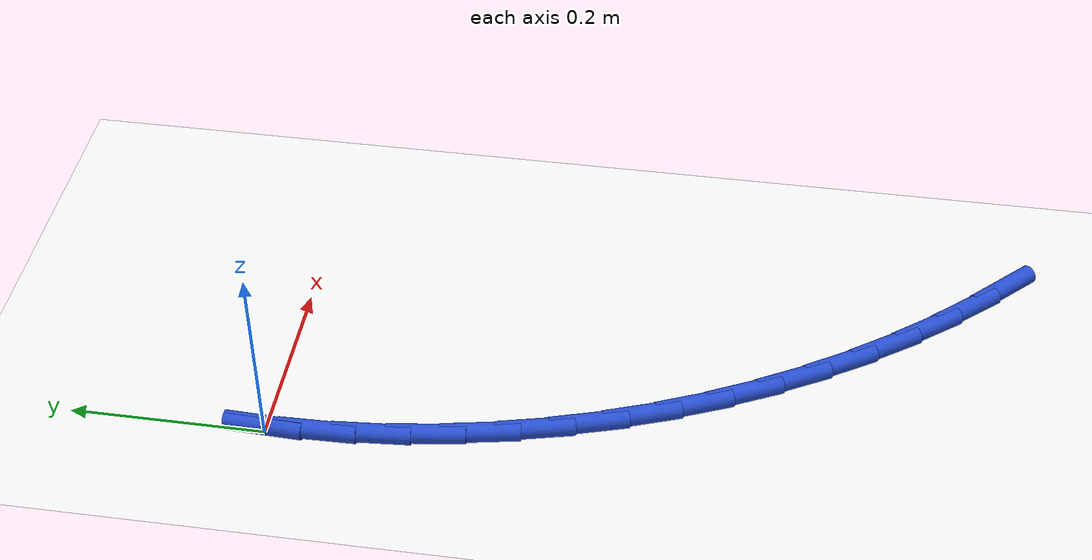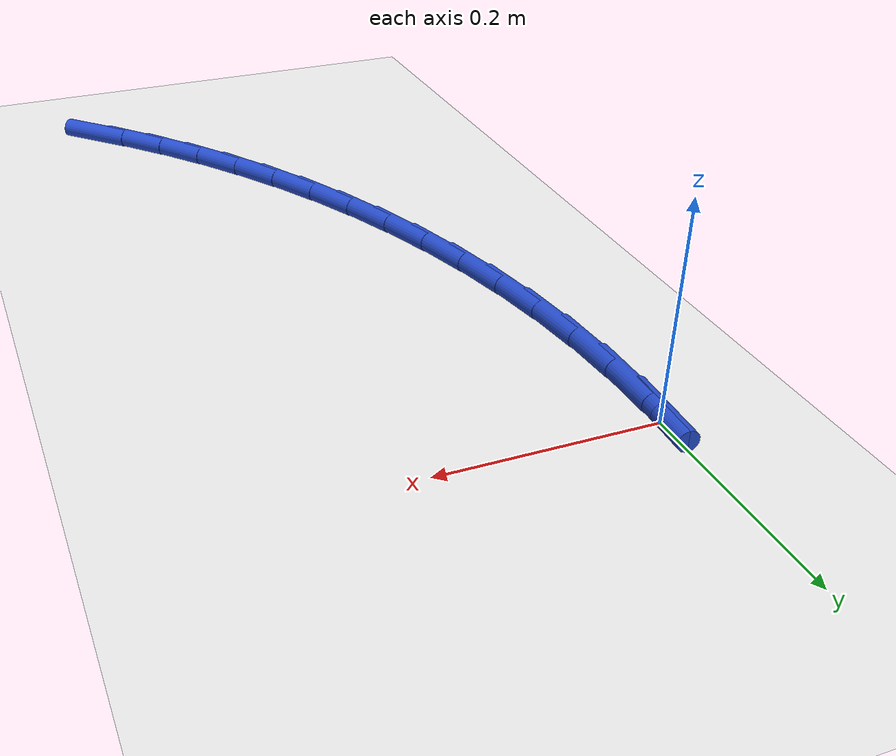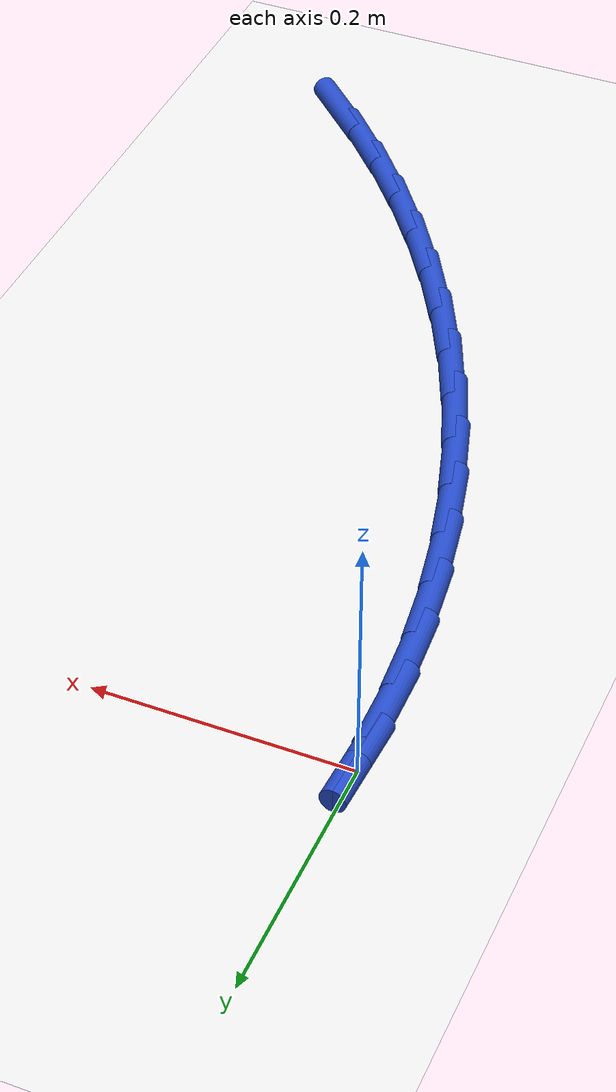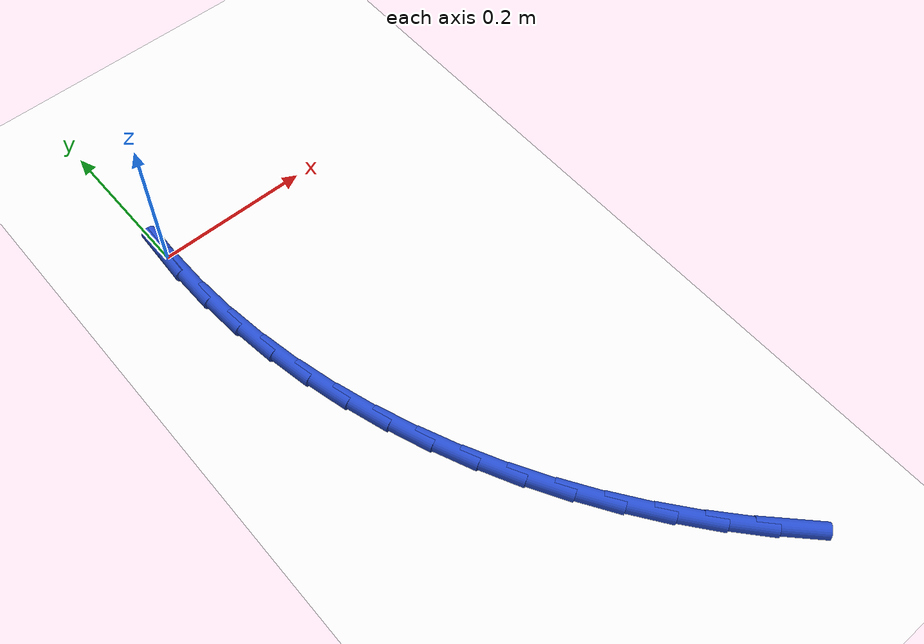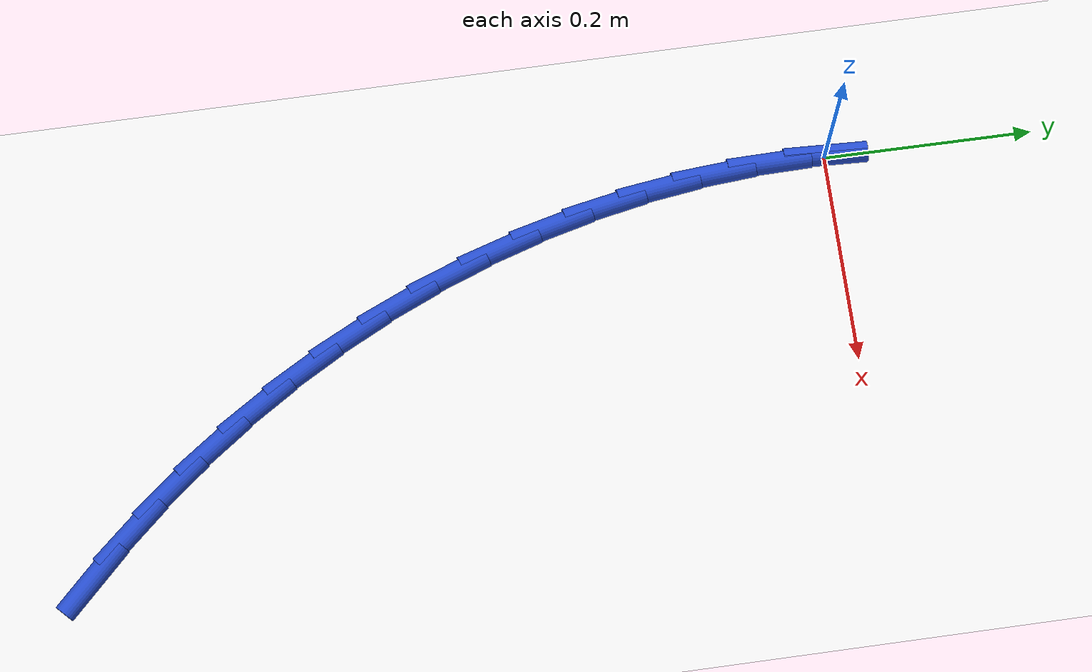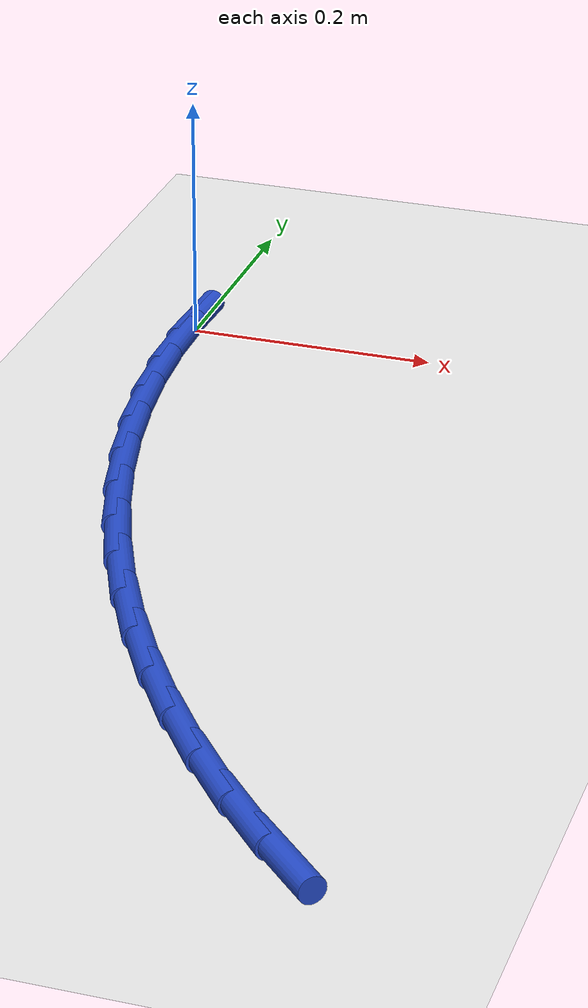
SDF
<sdf version="1.6">
 <world name="default">
  <model name="ground_plane">
   <static>1</static>
   <link name="link">
    <collision name="collision">
     <geometry><plane><normal>0 0 1</normal><size>100 100</size></plane></geometry>
     <surface><friction><ode><mu>100</mu><mu2>50</mu2></ode></friction></surface>
    </collision>
    <visual name="visual">
     <cast_shadows>0</cast_shadows>
     <geometry><plane><normal>0 0 1</normal><size>100 100</size></plane></geometry>
     <material>
      <script><uri>file://media/materials/scripts/gazebo.material</uri><name>Gazebo/WhiteGlow</name></script>
     </material>
    </visual>
   </link>
  </model>
  <model name="line">
   <link name="link_0">
    <pose>-3.122502256758253e-17 -8.326672684688674e-17 0.01 0 1.57 1.5301949164621702</pose>
    <collision name="collision">
     <geometry><cylinder><radius>0.01</radius><length>0.08</length></cylinder></geometry>
    </collision>
    <visual name="visual">
     <material>
      <script><name>Gazebo/Blue</name><uri>file://media/materials/scripts/gazebo.material</uri></script>
     </material>
     <geometry><cylinder><radius>0.01</radius><length>0.08</length></cylinder></geometry>
    </visual>
   </link>
   <link name="link_125">
    <pose>0.3131066867079045 -0.7267354090589861 0.01 0 1.57 -0.787316210090194</pose>
    <collision name="collision">
     <geometry><cylinder><radius>0.01</radius><length>0.08</length></cylinder></geometry>
    </collision>
    <visual name="visual">
     <material>
      <script><name>Gazebo/Blue</name><uri>file://media/materials/scripts/gazebo.material</uri></script>
     </material>
     <geometry><cylinder><radius>0.01</radius><length>0.08</length></cylinder></geometry>
    </visual>
   </link>
   <link name="link_126">
    <pose>0.27518445435489475 -0.6886674237415555 0.01 0 1.57 -0.841351327002172</pose>
    <collision name="collision">
     <geometry><cylinder><radius>0.01</radius><length>0.08</length></cylinder></geometry>
    </collision>
    <visual name="visual">
     <material>
      <script><name>Gazebo/Blue</name><uri>file://media/materials/scripts/gazebo.material</uri></script>
     </material>
     <geometry><cylinder><radius>0.01</radius><length>0.08</length></cylinder></geometry>
    </visual>
   </link>
   <link name="link_127">
    <pose>0.2391358392560633 -0.6483409134764496 0.01 0 1.57 -0.8944300002377676</pose>
    <collision name="collision">
     <geometry><cylinder><radius>0.01</radius><length>0.08</length></cylinder></geometry>
    </collision>
    <visual name="visual">
     <material>
      <script><name>Gazebo/Blue</name><uri>file://media/materials/scripts/gazebo.material</uri></script>
     </material>
     <geometry><cylinder><radius>0.01</radius><length>0.08</length></cylinder></geometry>
    </visual>
   </link>
   <link name="link_128">
    <pose>0.2051098276692079 -0.6059498317138223 0.01 0 1.57 -0.9469816472601591</pose>
    <collision name="collision">
     <geometry><cylinder><radius>0.01</radius><length>0.08</length></cylinder></geometry>
    </collision>
    <visual name="visual">
     <material>
      <script><name>Gazebo/Blue</name><uri>file://media/materials/scripts/gazebo.material</uri></script>
     </material>
     <geometry><cylinder><radius>0.01</radius><length>0.08</length></cylinder></geometry>
    </visual>
   </link>
   <link name="link_129">
    <pose>0.17325540585212723 -0.5616881319038293 0.01 0 1.57 -0.9994274242772518</pose>
    <collision name="collision">
     <geometry><cylinder><radius>0.01</radius><length>0.08</length></cylinder></geometry>
    </collision>
    <visual name="visual">
     <material>
      <script><name>Gazebo/Blue</name><uri>file://media/materials/scripts/gazebo.material</uri></script>
     </material>
     <geometry><cylinder><radius>0.01</radius><length>0.08</length></cylinder></geometry>
    </visual>
   </link>
   <link name="link_130">
    <pose>0.1437215600626198 -0.5157497674966258 0.01 0 1.57 -1.0521825051061495</pose>
    <collision name="collision">
     <geometry><cylinder><radius>0.01</radius><length>0.08</length></cylinder></geometry>
    </collision>
    <visual name="visual">
     <material>
      <script><name>Gazebo/Blue</name><uri>file://media/materials/scripts/gazebo.material</uri></script>
     </material>
     <geometry><cylinder><radius>0.01</radius><length>0.08</length></cylinder></geometry>
    </visual>
   </link>
   <link name="link_131">
    <pose>0.1166572765584836 -0.4683286919423654 0.01 0 1.57 -1.1056544662651768</pose>
    <collision name="collision">
     <geometry><cylinder><radius>0.01</radius><length>0.08</length></cylinder></geometry>
    </collision>
    <visual name="visual">
     <material>
      <script><name>Gazebo/Blue</name><uri>file://media/materials/scripts/gazebo.material</uri></script>
     </material>
     <geometry><cylinder><radius>0.01</radius><length>0.08</length></cylinder></geometry>
    </visual>
   </link>
   <link name="link_132">
    <pose>0.09221116387281617 -0.41961856570901224 0.01 0 1.57 -1.1598974196615088</pose>
    <collision name="collision">
     <geometry><cylinder><radius>0.01</radius><length>0.08</length></cylinder></geometry>
    </collision>
    <visual name="visual">
     <material>
      <script><name>Gazebo/Blue</name><uri>file://media/materials/scripts/gazebo.material</uri></script>
     </material>
     <geometry><cylinder><radius>0.01</radius><length>0.08</length></cylinder></geometry>
    </visual>
   </link>
   <link name="link_133">
    <pose>0.07050019092928457 -0.369788507999105 0.01 0 1.57 -1.2145280016109947</pose>
    <collision name="collision">
     <geometry><cylinder><radius>0.01</radius><length>0.08</length></cylinder></geometry>
    </collision>
    <visual name="visual">
     <material>
      <script><name>Gazebo/Blue</name><uri>file://media/materials/scripts/gazebo.material</uri></script>
     </material>
     <geometry><cylinder><radius>0.01</radius><length>0.08</length></cylinder></geometry>
    </visual>
   </link>
   <link name="link_134">
    <pose>0.05158628022899367 -0.31896494125340297 0.01 0 1.57 -1.2695728820901824</pose>
    <collision name="collision">
     <geometry><cylinder><radius>0.01</radius><length>0.08</length></cylinder></geometry>
    </collision>
    <visual name="visual">
     <material>
      <script><name>Gazebo/Blue</name><uri>file://media/materials/scripts/gazebo.material</uri></script>
     </material>
     <geometry><cylinder><radius>0.01</radius><length>0.08</length></cylinder></geometry>
    </visual>
   </link>
   <link name="link_135">
    <pose>0.03552584028738424 -0.26727001098927133 0.01 0 1.57 -1.3251084886052151</pose>
    <collision name="collision">
     <geometry><cylinder><radius>0.01</radius><length>0.08</length></cylinder></geometry>
    </collision>
    <visual name="visual">
     <material>
      <script><name>Gazebo/Blue</name><uri>file://media/materials/scripts/gazebo.material</uri></script>
     </material>
     <geometry><cylinder><radius>0.01</radius><length>0.08</length></cylinder></geometry>
    </visual>
   </link>
   <link name="link_136">
    <pose>0.022375279619897822 -0.21482586272407803 0.01 0 1.57 -1.3812029364931164</pose>
    <collision name="collision">
     <geometry><cylinder><radius>0.01</radius><length>0.08</length></cylinder></geometry>
    </collision>
    <visual name="visual">
     <material>
      <script><name>Gazebo/Blue</name><uri>file://media/materials/scripts/gazebo.material</uri></script>
     </material>
     <geometry><cylinder><radius>0.01</radius><length>0.08</length></cylinder></geometry>
    </visual>
   </link>
   <link name="link_137">
    <pose>0.012191006741975149 -0.16175464197518813 0.01 0 1.57 -1.437913052882136</pose>
    <collision name="collision">
     <geometry><cylinder><radius>0.01</radius><length>0.08</length></cylinder></geometry>
    </collision>
    <visual name="visual">
     <material>
      <script><name>Gazebo/Blue</name><uri>file://media/materials/scripts/gazebo.material</uri></script>
     </material>
     <geometry><cylinder><radius>0.01</radius><length>0.08</length></cylinder></geometry>
    </visual>
   </link>
   <link name="link_138">
    <pose>0.005029430169057272 -0.10817849425996787 0.01 0 1.57 -1.4952813241034522</pose>
    <collision name="collision">
     <geometry><cylinder><radius>0.01</radius><length>0.08</length></cylinder></geometry>
    </collision>
    <visual name="visual">
     <material>
      <script><name>Gazebo/Blue</name><uri>file://media/materials/scripts/gazebo.material</uri></script>
     </material>
     <geometry><cylinder><radius>0.01</radius><length>0.08</length></cylinder></geometry>
    </visual>
   </link>
   <link name="link_139">
    <pose>0.0009469584165851964 -0.054219565095783476 0.01 0 1.57 -1.553332849407006</pose>
    <collision name="collision">
     <geometry><cylinder><radius>0.01</radius><length>0.08</length></cylinder></geometry>
    </collision>
    <visual name="visual">
     <material>
      <script><name>Gazebo/Blue</name><uri>file://media/materials/scripts/gazebo.material</uri></script>
     </material>
     <geometry><cylinder><radius>0.01</radius><length>0.08</length></cylinder></geometry>
    </visual>
   </link>
   <link name="link_140">
    <pose>-2.6020852139652106e-17 -1.6653345369377348e-16 0.01 0 1.57 1.5295202299583703</pose>
    <collision name="collision">
     <geometry><cylinder><radius>0.01</radius><length>0.08</length></cylinder></geometry>
    </collision>
    <visual name="visual">
     <material>
      <script><name>Gazebo/Blue</name><uri>file://media/materials/scripts/gazebo.material</uri></script>
     </material>
     <geometry><cylinder><radius>0.01</radius><length>0.08</length></cylinder></geometry>
    </visual>
   </link>
  </model>
 </world>
</sdf>
